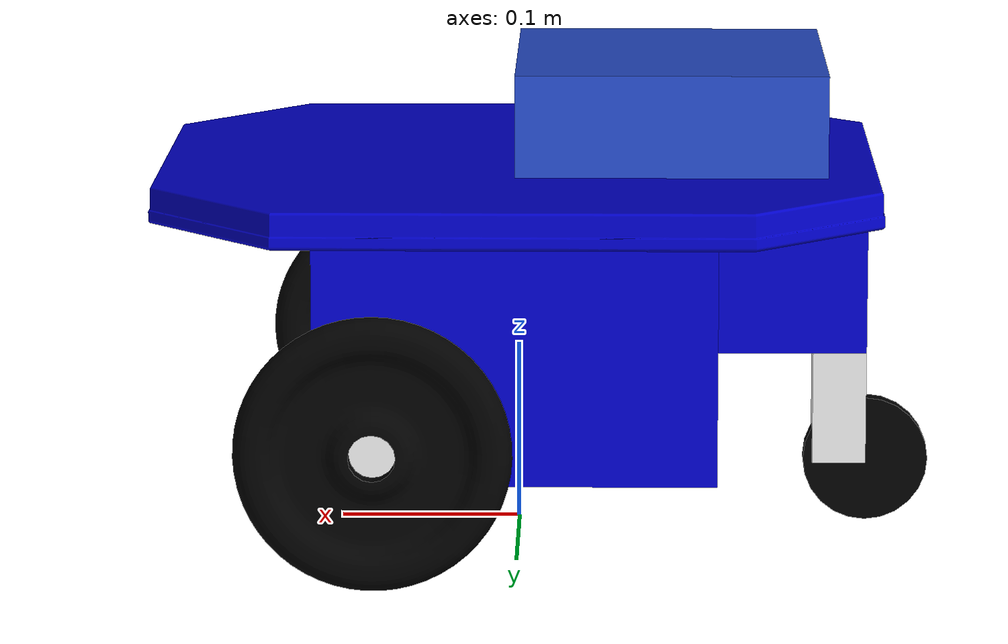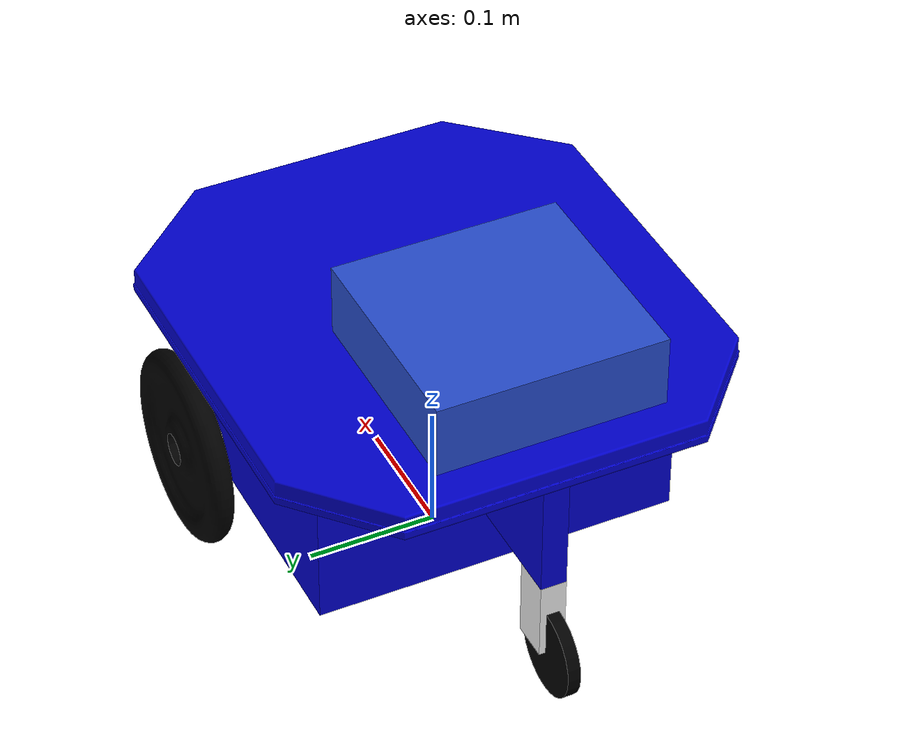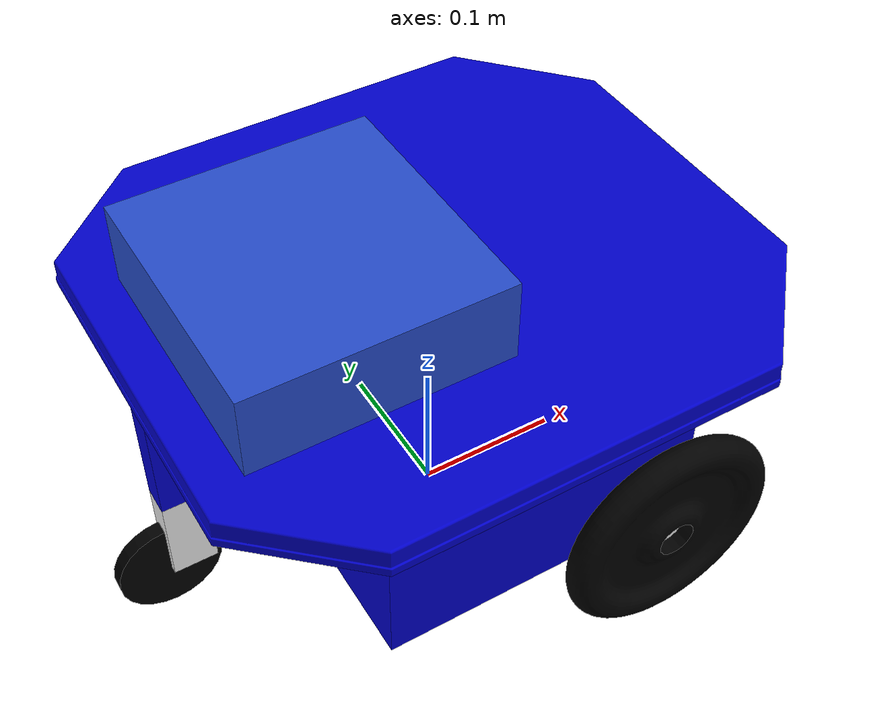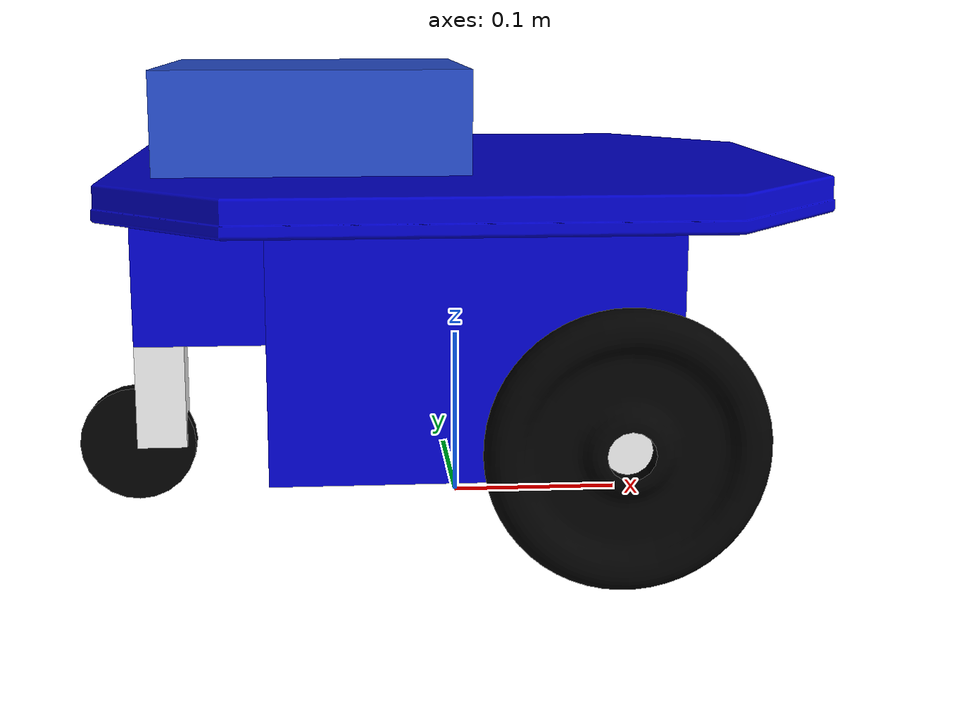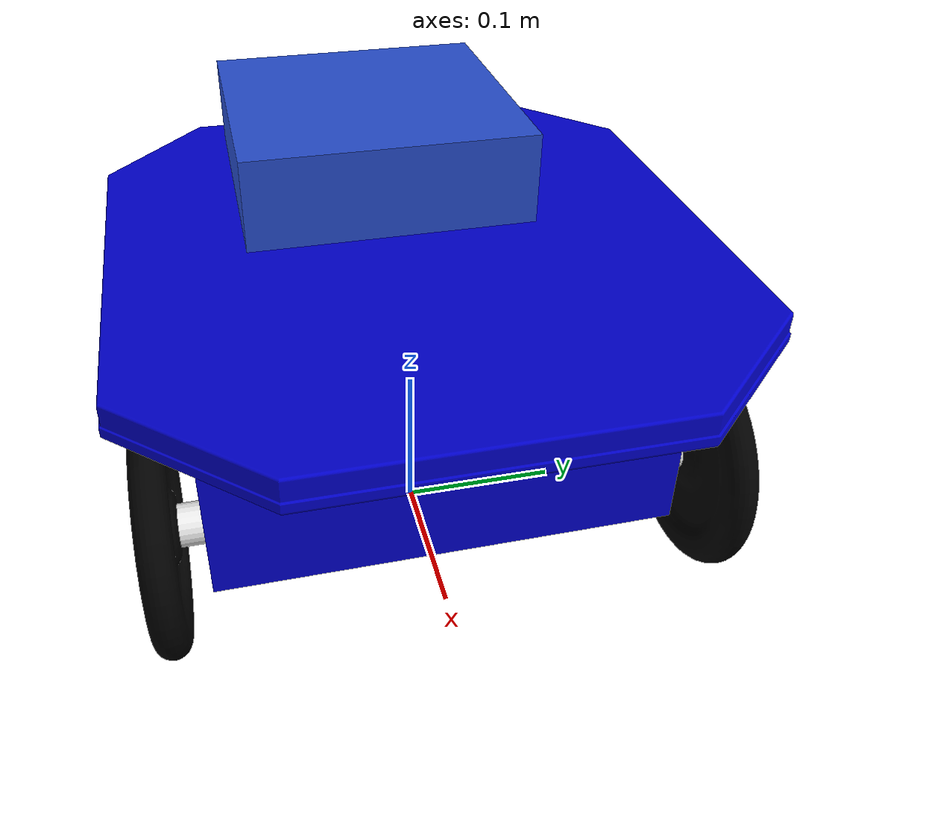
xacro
<?xml version="1.0"?>

<robot name="erratic"
    xmlns:sensor="http://playerstage.sourceforge.net/gazebo/xmlschema/#sensor"
    xmlns:controller="http://playerstage.sourceforge.net/gazebo/xmlschema/#controller"
    xmlns:interface="http://playerstage.sourceforge.net/gazebo/xmlschema/#interface">

    <!-- Included URDF Files -->
    <include filename="$(find erratic_description)/urdf/erratic_base.xacro" />

    <erratic />
</robot>

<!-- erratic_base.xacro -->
<robot
    xmlns:sensor="http://playerstage.sourceforge.net/gazebo/xmlschema/#sensor"
    xmlns:controller="http://playerstage.sourceforge.net/gazebo/xmlschema/#controller"
    xmlns:interface="http://playerstage.sourceforge.net/gazebo/xmlschema/#interface">

    <!-- Included URDF Files -->
    <include filename="$(find erratic_description)/urdf/materials.urdf.xacro" />
    <include filename="$(find erratic_description)/urdf/erratic_computer.xacro" />
    <include filename="$(find erratic_description)/urdf/erratic_wheel.xacro" />

    <!-- Properties (Constants) -->
    <property name="M_PI" value="3.14159"/>

    <property name="base_size_x" value="0.217" />
    <property name="base_size_y" value="0.280" />
    <property name="base_size_z" value="0.155" />

    <property name="top_size_x" value="0.3937" />
    <property name="top_size_y" value="0.3556" />
    <property name="top_size_z" value="0.0020" />

    <property name="wheel_radius" value="0.0746" />
    <property name="wheel_length" value="0.02" />
    <property name="caster_wheel_offset_y" value="0.17" />

    <property name="caster_support_x" value="0.086" />
    <property name="caster_support_z" value="0.1095" />

    <macro name="erratic">
        <!-- base_footprint is a fictitious link(frame) that is on the ground right below base_link origin,
             navigation stack depends on this frame -->
        <link name="base_footprint">
            <inertial>
                <mass value="0.0001" />
                <origin xyz="0 0 0" />
                <inertia ixx="0.0001" ixy="0.0" ixz="0.0"
                         iyy="0.0001" iyz="0.0"
                         izz="0.0001" />
            </inertial>

            <visual>
                <origin xyz="0 0 0" rpy="0 0 0" />
                <geometry>
                    <box size="0.001 0.001 0.001" />
                </geometry>
                <material name="Green" />
            </visual>

            <collision>
                <origin xyz="0 0 ${base_size_z/2 + 0.051}" rpy="0 0 0" />
                <geometry>
                  <box size="0.001 0.001 0.001" />
                </geometry>
            </collision>
        </link>

        <joint name="base_footprint_joint" type="fixed">
            <!-- NB: While you would think this would make it go up, it is oddly reversed.
                 This moves the joint to 0,0,0 where we want it for rviz, etc. -->
            <origin xyz="0 0 ${base_size_z/2 + 0.051}" rpy="0 0 0" />
            <parent link="base_footprint"/>
            <child link="base_link" />
        </joint>

        <!-- Links and Joints (i.e., the robot) -->
        <link name="base_link">
            <inertial>
                <mass value="20" />
                <origin xyz="${-base_size_x/2} 0 ${-base_size_z/2}" />
                <inertia ixx="1.0" ixy="0.0" ixz="0.0"
                         iyy="1.0" iyz="0.0"
                         izz="1.0" />
            </inertial>

            <visual>
                <origin xyz="0.0 0.0 0.0" rpy="0 0 0" />
                <geometry>
                    <box size="${base_size_x} ${base_size_y} ${base_size_z}" />
                </geometry>
                <material name="Blue" />
            </visual>

            <collision>
                <origin xyz="0.0 0.0 0.0" rpy="0 0 0" />
                <geometry>
                    <box size="${base_size_x} ${base_size_y} ${base_size_z}" />
                </geometry>
            </collision>
        </link>

        <joint name="base_top_joint" type="fixed" >
            <origin xyz="0 0 ${base_size_z/2 + top_size_z/2}" rpy="0 0 0" />
            <parent link="base_link" />
            <child link="base_top_link"/>
        </joint>

        <link name="base_top_link">
            <inertial>
                <mass value="1.0"/>
                <origin xyz="-0.00125736 0.0 -0.0032368" />
                <inertia ixx="0.00995424" ixy="0.0" ixz="0.00000413"
                         iyy="0.01191941" iyz="0.0" izx="0.00000413"
                         izz="0.02181097" />
            </inertial>

            <visual>
                <origin xyz="0.0 0.0 0.0" rpy="0 0 0" />
                <geometry>
                    <mesh filename="package://erratic_description/meshes/erratic_top.stl"/>
                </geometry>
                <material name="Blue" />
            </visual>

            <collision>
                <origin xyz="0.0 0.0 0.0" rpy="0 0 0" />
                <geometry>
                    <mesh filename="package://erratic_description/meshes/erratic_top.stl"/>
                </geometry>
            </collision>
        </link>

        <joint name="base_caster_box_joint" type="fixed">
            <origin xyz="-${base_size_x/2 + caster_support_x/2} 0 ${base_size_z/2 - caster_support_z/2}" rpy="0 0 0" />
            <parent link="base_link" />
            <child link="base_caster_box_link"/>
        </joint>

        <link name="base_caster_box_link">
            <inertial>
                <mass value="0.1"/>
                <origin xyz="0 0 0" />
                <inertia ixx="0.01" ixy="0.0" ixz="0.0"
                         iyy="0.01" iyz="0.0"
                         izz="0.01" />
            </inertial>

            <visual>
                <origin xyz="0.0 0.0 0.0" rpy="0 0 0" />
                <geometry>
                    <box size="${caster_support_x} 0.02 ${caster_support_z}" />
                </geometry>
                <material name="Blue" />
            </visual>

            <collision>
                <origin xyz="0.0 0.0 0.0" rpy="0 0 0" />
                <geometry>
                    <box size="${caster_support_x} 0.02 ${caster_support_z}" />
                </geometry>
            </collision>
        </link>

        <joint name="base_caster_support_joint" type="continuous">
            <origin xyz="${-caster_support_x/2 + 0.015} 0 ${-caster_support_z/2 - 0.0315}" rpy="0 0 0" />
            <parent link="base_caster_box_link" />
            <child link="base_caster_support_link"/>

            <axis xyz="0 0 1" />
            <anchor xyz="0.01 0 0" />
            <limit effort="100" velocity="100" k_velocity="0" />
            <joint_properties damping="0.0" friction="0.0" />
        </joint>

        <transmission type="pr2_mechanism_model/SimpleTransmission" name="base_caster_support_trans">
            <actuator name="base_caster_support_motor" />
            <joint name="base_caster_support_joint" />
            <mechanicalReduction>1.0</mechanicalReduction>
        </transmission>

        <link name="base_caster_support_link">
            <inertial>
                <mass value="0.1"/>
                <origin xyz="0 0 0" />
                <inertia ixx="0.01" ixy="0.0" ixz="0.0"
                         iyy="0.01" iyz="0.0"
                         izz="0.01" />
            </inertial>

            <visual>
                <origin xyz="0.0 0.0 0.0" rpy="0 0 0" />
                <geometry>
                    <box size="0.03 0.02 0.063" />
                </geometry>
            </visual>

            <collision>
                <origin xyz="0.0 0.0 0.0" rpy="0 0 0" />
                <geometry>
                    <box size="0.03 0.02 0.063" />
                </geometry>
            </collision>
        </link>

        <joint name="caster_wheel_joint" type="continuous">
            <origin xyz="-0.015 0 -0.03" rpy="0 0 0" />
            <parent link="base_caster_support_link" />
            <child link="caster_wheel_link" />

            <axis xyz="0 1 0" />
            <anchor xyz="0 0 0" />
            <limit effort="100" velocity="100" k_velocity="0" />
            <joint_properties damping="0.0" friction="0.0" />
        </joint>

        <transmission type="pr2_mechanism_model/SimpleTransmission" name="caster_wheel_trans">
            <actuator name="caster_wheel_motor" />
            <joint name="caster_wheel_joint" />
            <mechanicalReduction>1.0</mechanicalReduction>
        </transmission>

        <link name="caster_wheel_link">
            <inertial>
                <mass value="0.1" />
                <origin xyz="0.0 0.0 0.0" rpy="0 0 0" />
                <inertia  ixx="0.012411765597" ixy="-0.000711733678" ixz="0.00050272983"
                          iyy="0.015218160428" iyz="-0.000004273467"
                          izz="0.011763977943" />
            </inertial>

            <visual>
                <origin xyz="0 0 0" rpy="${M_PI/2} 0 0" />
                <geometry>
                    <cylinder radius="0.035" length="0.01" />
                </geometry>
                <material name="Black"/>
            </visual>

            <collision>
            <origin xyz="0 0 0" rpy="${M_PI/2} 0 0" />
            <geometry>
                <cylinder radius="0.035" length="0.01" />
            </geometry>
            </collision>
        </link>

        <gazebo reference="caster_wheel_link">
            <mu1 value="100.0" />
            <mu2 value="100.0" />
            <kp  value="1000000.0" />
            <kd  value="1.0" />
        </gazebo>

        <!-- MACRO INSTANTIATION -->

        <erratic_computer parent="base_top_link"/>
        <erratic_wheel suffix="left" parent="base_link" reflect="1"/>
        <erratic_wheel suffix="right" parent="base_link" reflect="-1"/>

        <!-- CONTROLLERS -->

        <gazebo>
            <controller:diffdrive_plugin name="differential_drive_controller" plugin="libdiffdrive_plugin.so">
                <alwaysOn>true</alwaysOn>
                <update>100</update>
                <updateRate>100.0</updateRate>
                <leftJoint>base_link_right_wheel_joint</leftJoint>
                <rightJoint>base_link_left_wheel_joint</rightJoint>
                <wheelSeparation>${caster_wheel_offset_y*2}</wheelSeparation>
                <wheelDiameter>${wheel_radius*2}</wheelDiameter>
                <torque>5</torque>
                <interface:position name="position_iface_0"/>
                <robotNamespace>/</robotNamespace>
                <topicName>cmd_vel</topicName>
            </controller:diffdrive_plugin>

            <controller:gazebo_ros_p3d name="p3d_base_controller" plugin="libgazebo_ros_p3d.so">
                <alwaysOn>true</alwaysOn>
                <updateRate>100.0</updateRate>
                <bodyName>base_link</bodyName>
                <topicName>base_pose_ground_truth</topicName>
                <gaussianNoise>0.01</gaussianNoise>
                <frameName>map</frameName>
                <xyzOffsets>0 0 0</xyzOffsets>
                <rpyOffsets>0 0 0</rpyOffsets>
                <interface:position name="p3d_base_position"/>
            </controller:gazebo_ros_p3d>

            <canonicalBody>base_footprint</canonicalBody>

            <controller:gazebo_ros_controller_manager name="gazebo_ros_controller_manager" plugin="libgazebo_ros_controller_manager.so">
                <alwaysOn>true</alwaysOn>
                <updateRate>100.0</updateRate>
                <interface:audio name="gazebo_ros_controller_manager_dummy_iface" />
            </controller:gazebo_ros_controller_manager>
        </gazebo>

        <!-- GAZEBO MATERIALS -->

        <gazebo reference="base_link">
            <material>Erratic/BlueBrushedAluminum</material>
        </gazebo>

        <gazebo reference="base_top_link">
            <material>Erratic/BlueBrushedAluminum</material>
        </gazebo>

        <gazebo reference="caster_wheel_link">
            <material>Erratic/Black</material>
        </gazebo>

        <gazebo reference="base_caster_box_link">
            <material>Erratic/Black</material>
        </gazebo>

        <gazebo reference="base_caster_support_link">
            <material>Erratic/White</material>
        </gazebo>
    </macro>
</robot>

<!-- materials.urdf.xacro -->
<robot>

    <material name="Black">
        <color rgba="0.0 0.0 0.0 1.0"/>
    </material>

    <material name="Blue">
        <color rgba="0.0 0.0 0.8 1.0"/>
    </material>

    <material name="Green">
        <color rgba="0.0 0.8 0.0 1.0"/>
    </material>

    <material name="Grey">
        <color rgba="0.7 0.7 0.7 1.0"/>
    </material>

    <material name="Grey2">
        <color rgba="0.9 0.9 0.9 1.0"/>
    </material>

    <material name="Red">
        <color rgba="0.8 0.0 0.0 1.0"/>
    </material>

    <material name="White">
        <color rgba="1.0 1.0 1.0 1.0"/>
    </material>

    <material name="GunMetalBrushedAluminum">
        <texture filename="package://smart_arm_description/Media/materials/textures/gun_metal_brushed_aluminum.jpg" />
    </material>

</robot>

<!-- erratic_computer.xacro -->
<robot
    xmlns:sensor="http://playerstage.sourceforge.net/gazebo/xmlschema/#sensor"
    xmlns:controller="http://playerstage.sourceforge.net/gazebo/xmlschema/#controller"
    xmlns:interface="http://playerstage.sourceforge.net/gazebo/xmlschema/#interface">

    <property name="computer_size_x" value="0.170" />
    <property name="computer_size_y" value="0.175" />
    <property name="computer_size_z" value="0.056" />

    <macro name="erratic_computer" params="parent">
        <joint name="computer_mount_joint" type="fixed">
            <origin xyz="-${top_size_x/2 - 0.0254 - computer_size_y/2} ${top_size_y/2 - 0.1 - computer_size_y/2} ${top_size_z/2}" />
            <parent link="${parent}" />
            <child link="computer_link" />
        </joint>

        <link name="computer_link">
            <inertial>
                <mass value="2"/>
                <origin xyz="0 0 ${computer_size_z/2}" rpy="0 0 0" />
                <inertia    ixx="0.1" ixy="0" ixz="0"
                            iyy="0.1" iyz="0"
                            izz="0.1"/>
            </inertial>

            <visual>
                <origin xyz="0 0 ${computer_size_z/2}" rpy="0 0 0" />
                <geometry>
                    <box size="${computer_size_x} ${computer_size_y} ${computer_size_z}"/>
                </geometry>
            </visual>

            <collision>
                <origin xyz="0 0 ${computer_size_z/2}" rpy="0 0 0" />
                <geometry>
                    <box size="${computer_size_x} ${computer_size_y} ${computer_size_z}"/>
                </geometry>
            </collision>
        </link>

        <gazebo reference="computer_link">
            <material>Erratic/BlueBrushedAluminum</material>
        </gazebo>
    </macro>
</robot>

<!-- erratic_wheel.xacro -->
<robot
    xmlns:sensor="http://playerstage.sourceforge.net/gazebo/xmlschema/#sensor"
    xmlns:controller="http://playerstage.sourceforge.net/gazebo/xmlschema/#controller"
    xmlns:interface="http://playerstage.sourceforge.net/gazebo/xmlschema/#interface">

    <!-- Properties (Constants) -->
    <property name="M_PI" value="3.14159"/>

    <property name="wheel_offset_z" value="${-base_size_z/2 + 0.0236}" />

    <macro name="erratic_wheel" params="suffix parent reflect">
        <joint name="${parent}_${suffix}_motor_joint" type="fixed">
            <origin xyz="0.075 ${reflect*base_size_y/2} ${wheel_offset_z}" rpy="0 0 0" />
            <parent link="${parent}" />
            <child link="${parent}_${suffix}_motor_link" />
        </joint>

        <link name="${parent}_${suffix}_motor_link">
            <inertial>
                <mass value="0.1" />
                <origin xyz=" 0 ${reflect*0.0125} 0 " />
                <inertia  ixx="0.012411765597" ixy="0.0" ixz="0.0"
                          iyy="0.015218160428" iyz="0.0"
                          izz="0.011763977943" />
            </inertial>

            <visual>
                <origin xyz="0 ${reflect*0.0125} 0" rpy="${M_PI/2} 0 0" />
                <geometry>
                    <cylinder radius="0.0127" length="0.025" />
                </geometry>
            </visual>

            <collision>
                <origin xyz="0 ${reflect*0.0125} 0" rpy="${M_PI/2} 0 0" />
                <geometry>
                    <cylinder radius="0.0127" length="0.025" />
                </geometry>
            </collision>
        </link>

        <joint name="${parent}_${suffix}_wheel_joint" type="continuous">
            <origin xyz="0 ${reflect*0.025} 0" rpy="0 0 0" />
            <axis xyz="0 1 0" />
            <anchor xyz="0 0 0" />
            <limit effort="100" velocity="100" />
            <joint_properties damping="0.0" friction="0.0" />
            <parent link="${parent}_${suffix}_motor_link" />
            <child link="${parent}_${suffix}_wheel_link" />
        </joint>

        <link name="${parent}_${suffix}_wheel_link">
            <inertial>
                <mass value="0.1" />
                <origin xyz=" 0 0 0 " />
                <inertia  ixx="0.012411765597" ixy="0.0" ixz="0.0"
                          iyy="0.015218160428" iyz="0.0"
                          izz="0.011763977943" />
            </inertial>

            <visual>
                <origin xyz="0 0 0" rpy="0 0 ${M_PI/2}" />
                <geometry>
                    <mesh filename="package://erratic_description/meshes/erratic_wheel.stl"/>
                </geometry>
                <material name="Black" />
            </visual>

            <collision>
                <origin xyz="0 0 0" rpy="0 0 ${M_PI/2}" />
                <geometry>
                    <mesh filename="package://erratic_description/meshes/erratic_wheel.stl"/>
                </geometry>
            </collision>
        </link>

        <gazebo reference="${parent}_${suffix}_wheel_link" >
            <mu1 value="100.0" />
            <mu2 value="100.0" />
            <kp  value="1000000.0" />
            <kd  value="1.0" />
            <material>Erratic/Grey</material>
        </gazebo>

        <gazebo reference="${parent}_${suffix}_motor_link" >
            <material>Erratic/White</material>
        </gazebo>

        <transmission type="pr2_mechanism_model/SimpleTransmission" name="${parent}_${suffix}_wheel_trans">
            <actuator name="${parent}_${suffix}_wheel_motor" />
            <joint name="${parent}_${suffix}_wheel_joint" />
            <mechanicalReduction>1.0</mechanicalReduction>
        </transmission>
    </macro>
</robot>
